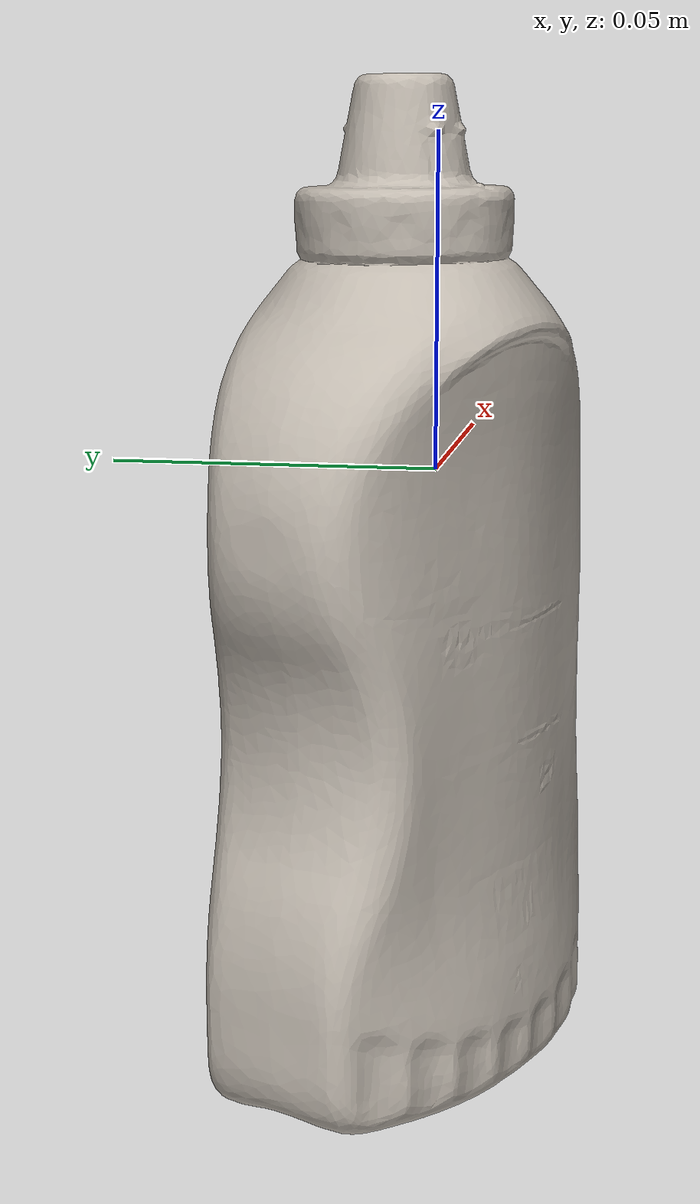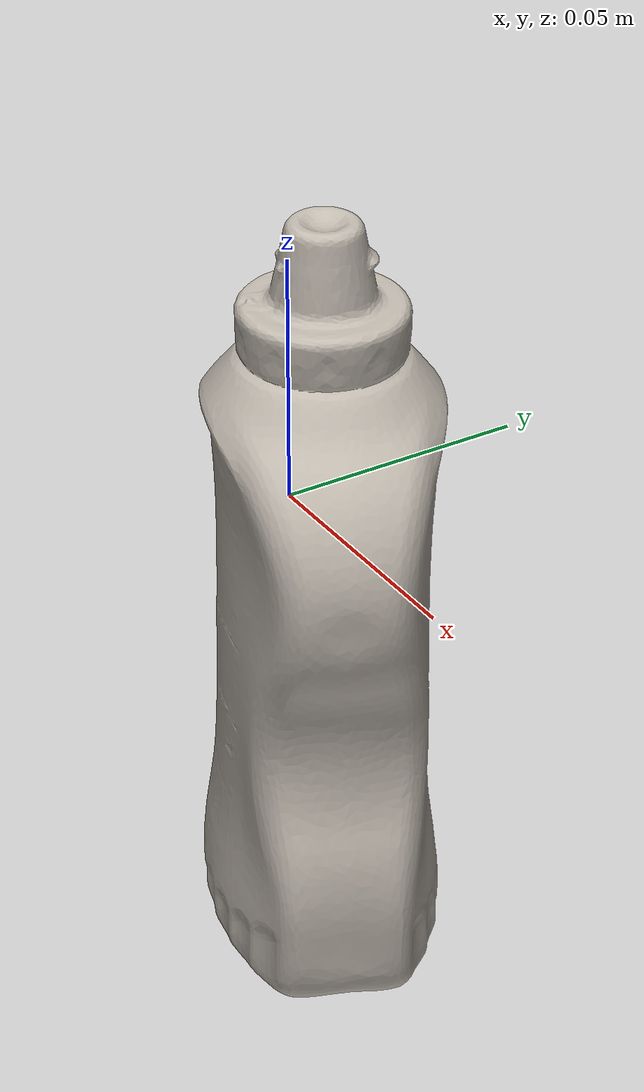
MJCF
<mujoco model="bread">
  <asset>
    <mesh file="nontextured.stl" name="obj_mesh" scale="0.8 0.8 0.8"/>
    <texture file="../../../../../textures/bread.png" type="2d" name="tex-bread" />
    <material name="bread" reflectance="0.7" texrepeat="15 15" texture="tex-bread" texuniform="true"/>
  </asset>
  <worldbody>
    <body>
      <body name="collision">
        <geom pos="0.015338999999999998 0.0234985 -0.09249750000000001" mesh="obj_mesh" type="mesh" solimp="0.998 0.998 0.001" solref="0.001 1" density="50" friction="0.95 0.3 0.1"  material="bread" group="1" condim="4"/>
      </body>
      <body name="visual">
        <geom pos="0.015338999999999998 0.0234985 -0.09249750000000001" mesh="obj_mesh" type="mesh" material="bread"  conaffinity="0" contype="0"  group="0" mass="0.0001"/>
        <geom pos="0.015338999999999998 0.0234985 -0.09249750000000001" mesh="obj_mesh" type="mesh" material="bread"  conaffinity="0" contype="0"  group="1" mass="0.0001"/>
      </body>
      <site rgba="0 0 0 0" size="0.005" pos="0 0 -0.0956505" name="bottom_site"/>
      <site rgba="0 0 0 0" size="0.005" pos="0 0 0.0956505" name="top_site"/>
      <site rgba="0 0 0 0" size="0.005" pos="0.048598999999999996 0.0333105 0.0956505" name="horizontal_radius_site"/>
    </body>
  </worldbody>
</mujoco>
